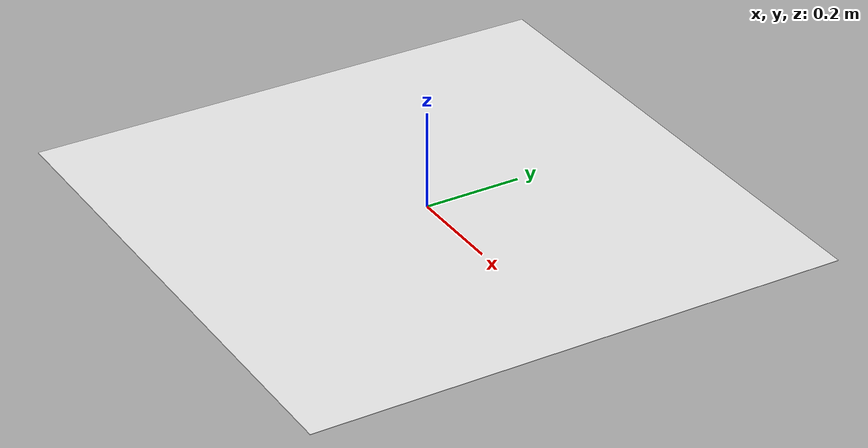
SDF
<?xml version="1.0"?>
<sdf version="1.9">
  <model name="aruco_marker_23">
    <static>true</static>
    <link name="link">
      <visual name="aruco_marker_visual">
        <pose>0 0 0.003 0 0 0</pose>
        <geometry>
          <plane>
            <normal>0 0 1</normal>
            <size>1.1 1.1</size>
          </plane>
        </geometry>
        <material>
          <ambient>1 1 1 1</ambient>
          <diffuse>1 1 1 1</diffuse>
          <pbr>
            <metal>
              <albedo_map>model://aruco_marker_23/materials/textures/aruco_23.png</albedo_map>
            </metal>
          </pbr>
        </material>
      </visual>
    </link>
  </model>
</sdf>
